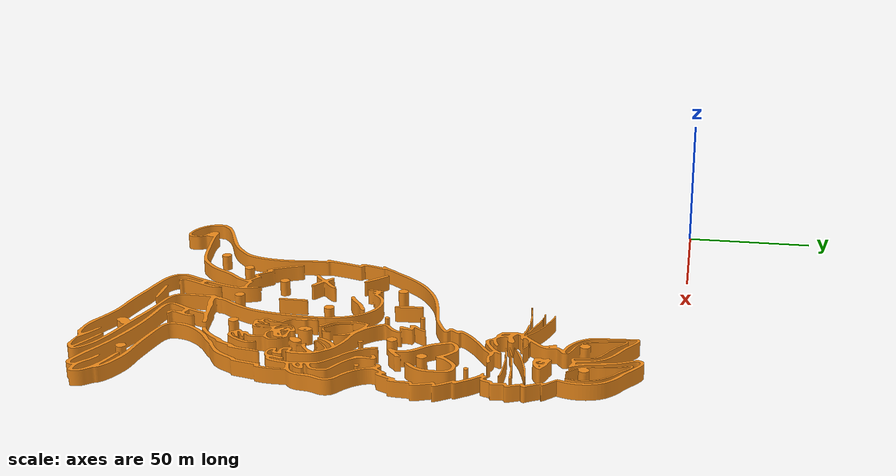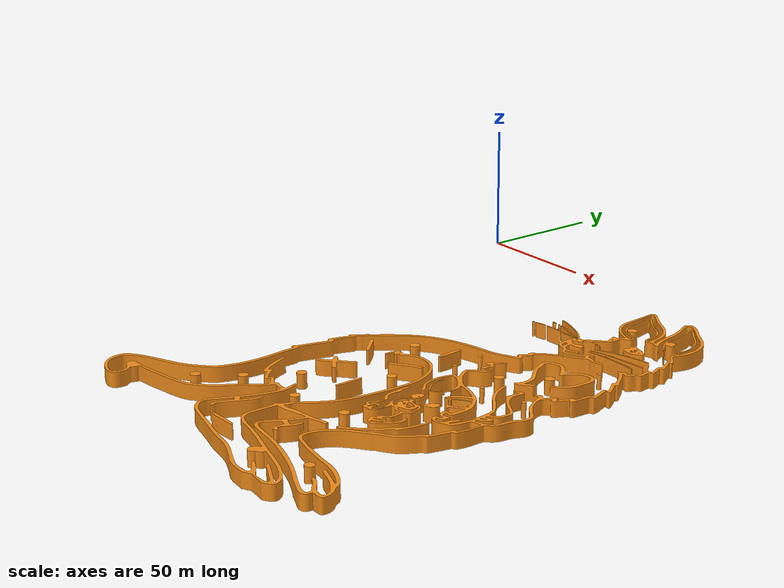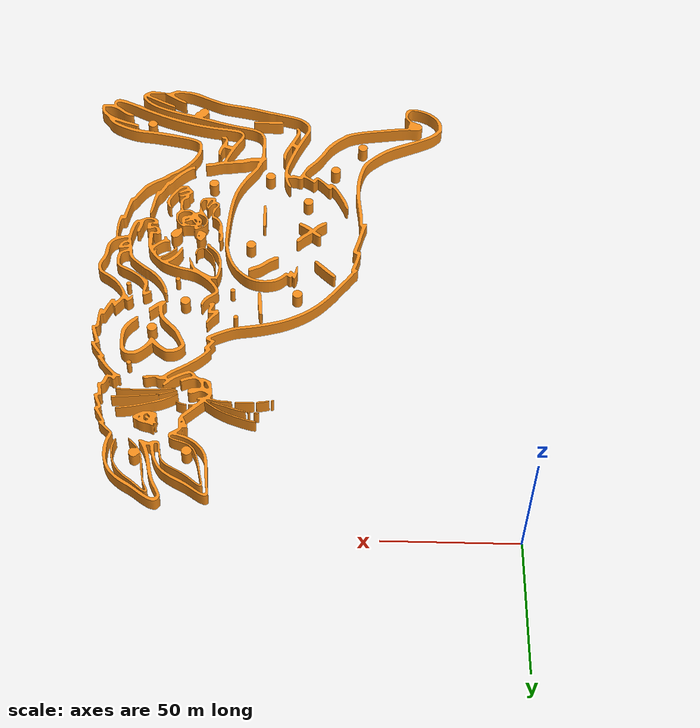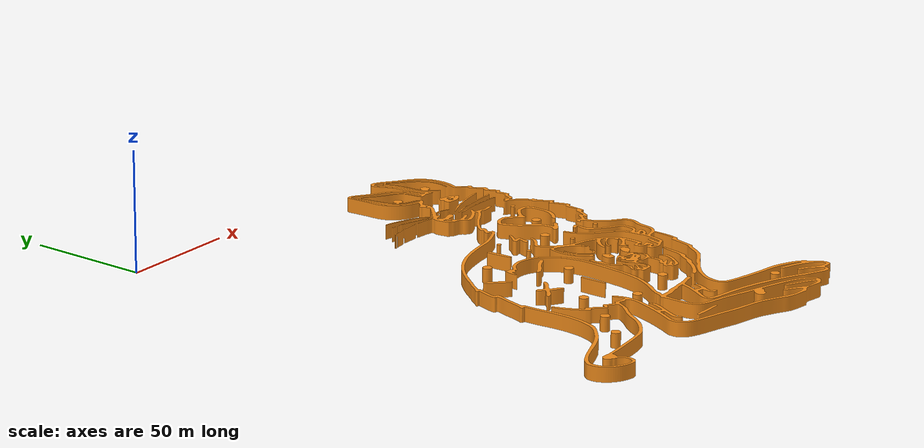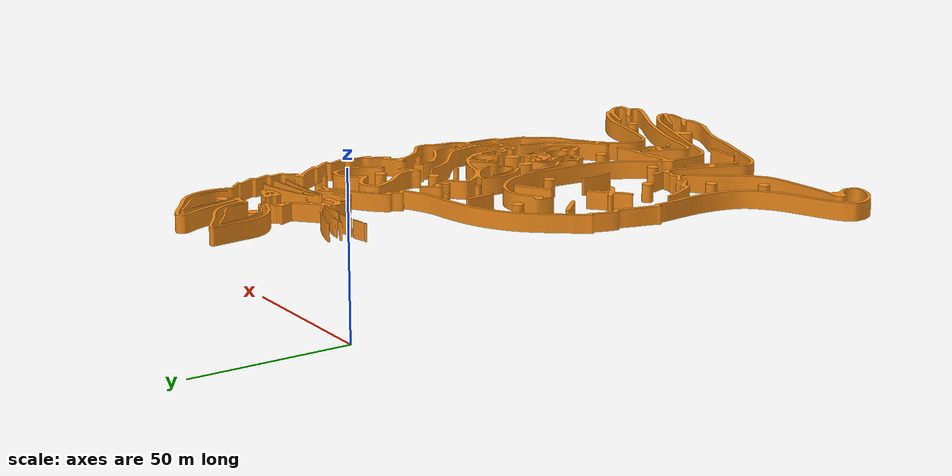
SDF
<?xml version="1.0" ?>
<sdf version="1.5">
  <model name="Robocup2019_outdoor_kangaroo">
    <static>true</static>
    <pose>0 0 0 0 0 0</pose>
    <link name="link">
      <collision name="collision">
        <geometry>
          <mesh>
            <uri>model://Robocup2019_outdoor_kangaroo/kangaroo.stl</uri>
            <scale>800 800 1</scale>
          </mesh>
        </geometry>
      </collision>
      <visual name="visual">
        <geometry>
          <mesh>
            <uri>model://Robocup2019_outdoor_kangaroo/kangaroo.stl</uri>
            <scale>800 800 1</scale>
          </mesh>
        </geometry>
        <cast_shadows>false</cast_shadows>
        <material>
          <script>
            <uri>file://media/materials/scripts/gazebo.material</uri>
            <name>Gazebo/Orange</name>
          </script>
        </material>
      </visual>
    </link>
  </model>
</sdf>
